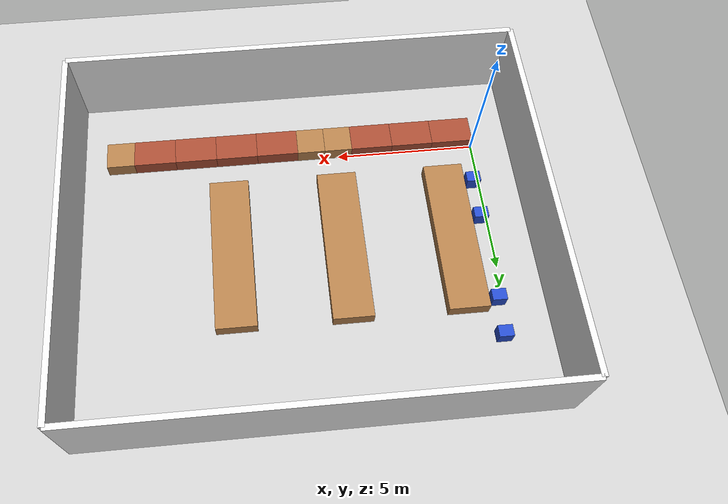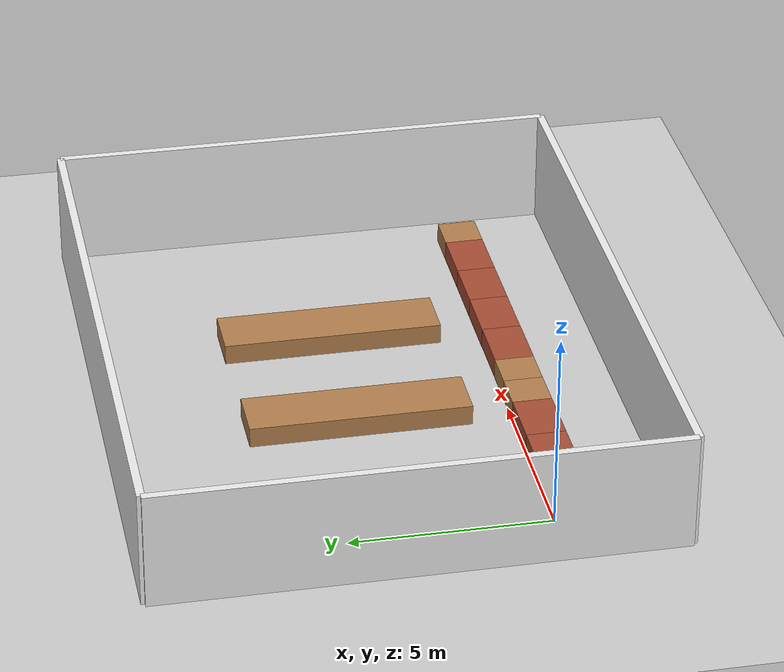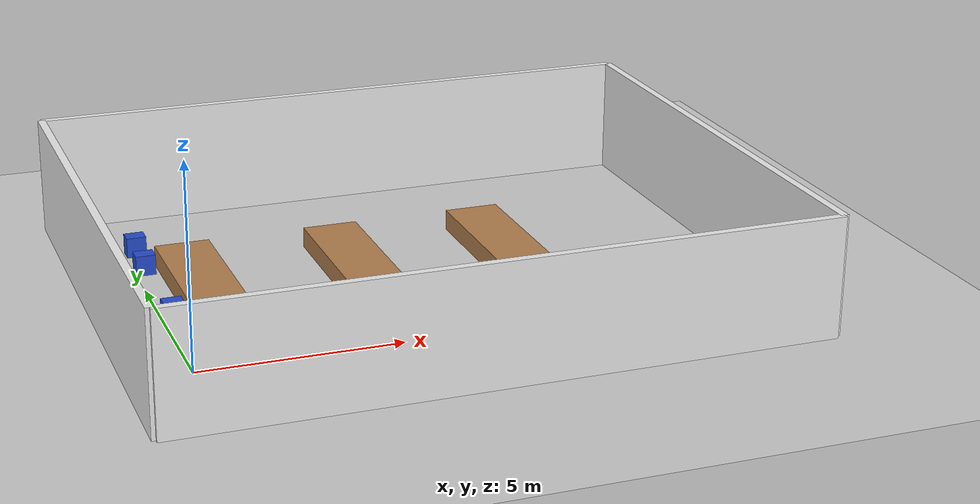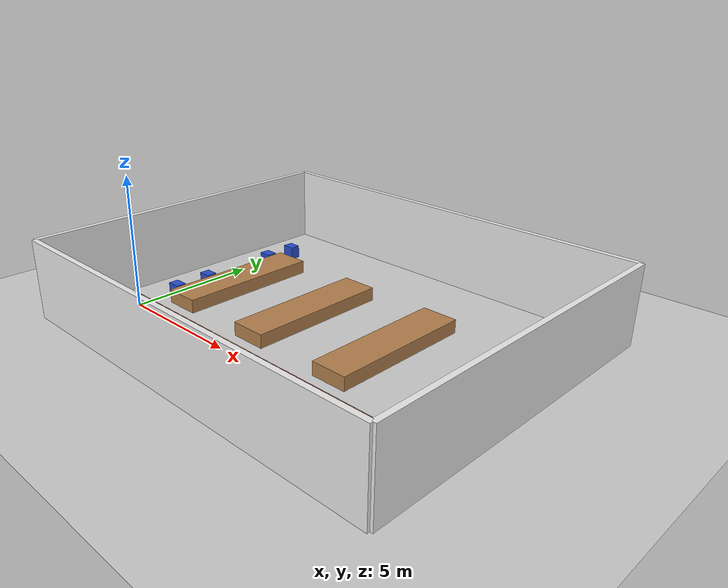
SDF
<sdf version="1.7">
 <world name="default">
  <light name="sun" type="directional">
   <pose>0 0 10 0 -0 0</pose>
   <diffuse>0.8 0.8 0.8 1</diffuse>
   <specular>0.2 0.2 0.2 1</specular>
   <attenuation>
    <range>1000</range>
    <constant>0.9</constant>
    <linear>0.01</linear>
    <quadratic>0.001</quadratic>
   </attenuation>
   <direction>-0.5 0.1 -0.9</direction>
   <spot><inner_angle>0</inner_angle><outer_angle>0</outer_angle><falloff>0</falloff></spot>
  </light>
  <gravity>0 0 -9.8</gravity>
  <magnetic_field>6e-06 2.3e-05 -4.2e-05</magnetic_field>
  <atmosphere type="adiabatic"/>
  <physics type="ode">
   <max_step_size>0.001</max_step_size>
   <real_time_factor>1</real_time_factor>
   <real_time_update_rate>1000</real_time_update_rate>
  </physics>
  <scene><ambient>0.4 0.4 0.4 1</ambient><background>0.7 0.7 0.7 1</background><shadows>1</shadows></scene>
  <audio><device>default</device></audio>
  <spherical_coordinates>
   <surface_model>EARTH_WGS84</surface_model>
   <latitude_deg>0</latitude_deg>
   <longitude_deg>0</longitude_deg>
   <elevation>0</elevation>
   <heading_deg>0</heading_deg>
  </spherical_coordinates>
  <model name="labwall">
   <link name="link_3">
    <inertial>
     <mass>1</mass>
     <inertia>
      <ixx>0.166667</ixx>
      <ixy>0</ixy>
      <ixz>0</ixz>
      <iyy>0.166667</iyy>
      <iyz>0</iyz>
      <izz>0.166667</izz>
     </inertia>
    </inertial>
    <visual name="visual">
     <geometry><box><size>1.5 1 1</size></box></geometry>
     <material>
      <lighting>1</lighting>
      <script><uri>file://media/materials/scripts/gazebo.material</uri><name>Gazebo/Bricks</name></script>
      <shader type="pixel"><normal_map>__default__</normal_map></shader>
      <ambient>0.3 0.3 0.3 1</ambient>
      <diffuse>0.7 0.7 0.7 1</diffuse>
      <specular>0.01 0.01 0.01 1</specular>
      <emissive>0 0 0 1</emissive>
     </material>
    </visual>
    <collision name="collision">
     <geometry><box><size>1.5 1 1</size></box></geometry>
     <surface>
      <friction>
       <ode><mu>1</mu><mu2>1</mu2><fdir1>0 0 0</fdir1><slip1>0</slip1><slip2>0</slip2></ode>
       <torsional>
        <coefficient>1</coefficient>
        <patch_radius>0</patch_radius>
        <surface_radius>0</surface_radius>
        <use_patch_radius>1</use_patch_radius>
        <ode><slip>0</slip></ode>
       </torsional>
      </friction>
      <bounce><restitution_coefficient>0</restitution_coefficient><threshold>1e+06</threshold></bounce>
      <contact>
       <collide_without_contact>0</collide_without_contact>
       <collide_without_contact_bitmask>1</collide_without_contact_bitmask>
       <collide_bitmask>1</collide_bitmask>
       <ode>
        <soft_cfm>0</soft_cfm>
        <soft_erp>0.2</soft_erp>
        <kp>1e+06</kp>
        <kd>1</kd>
        <max_vel>0.01</max_vel>
        <min_depth>0</min_depth>
       </ode>
       <bullet>
        <split_impulse>1</split_impulse>
        <split_impulse_penetration_threshold>-0.01</split_impulse_penetration_threshold>
        <soft_cfm>0</soft_cfm>
        <soft_erp>0.2</soft_erp>
        <kp>1e+06</kp>
        <kd>1</kd>
       </bullet>
      </contact>
     </surface>
    </collision>
   </link>
   <static>1</static>
   <pose>0.75 -0.5 0 0 -0 0</pose>
  </model>
  <model name="labwall_0">
   <link name="link_3">
    <inertial>
     <mass>1</mass>
     <inertia>
      <ixx>0.166667</ixx>
      <ixy>0</ixy>
      <ixz>0</ixz>
      <iyy>0.166667</iyy>
      <iyz>0</iyz>
      <izz>0.166667</izz>
     </inertia>
    </inertial>
    <visual name="visual">
     <geometry><box><size>1.5 1 1</size></box></geometry>
     <material>
      <lighting>1</lighting>
      <script><uri>file://media/materials/scripts/gazebo.material</uri><name>Gazebo/Bricks</name></script>
      <shader type="pixel"><normal_map>__default__</normal_map></shader>
      <ambient>0.3 0.3 0.3 1</ambient>
      <diffuse>0.7 0.7 0.7 1</diffuse>
      <specular>0.01 0.01 0.01 1</specular>
      <emissive>0 0 0 1</emissive>
     </material>
    </visual>
    <collision name="collision">
     <geometry><box><size>1.5 1 1</size></box></geometry>
     <surface>
      <friction>
       <ode><mu>1</mu><mu2>1</mu2><fdir1>0 0 0</fdir1><slip1>0</slip1><slip2>0</slip2></ode>
       <torsional>
        <coefficient>1</coefficient>
        <patch_radius>0</patch_radius>
        <surface_radius>0</surface_radius>
        <use_patch_radius>1</use_patch_radius>
        <ode><slip>0</slip></ode>
       </torsional>
      </friction>
      <bounce><restitution_coefficient>0</restitution_coefficient><threshold>1e+06</threshold></bounce>
      <contact>
       <collide_without_contact>0</collide_without_contact>
       <collide_without_contact_bitmask>1</collide_without_contact_bitmask>
       <collide_bitmask>1</collide_bitmask>
       <ode>
        <soft_cfm>0</soft_cfm>
        <soft_erp>0.2</soft_erp>
        <kp>1e+06</kp>
        <kd>1</kd>
        <max_vel>0.01</max_vel>
        <min_depth>0</min_depth>
       </ode>
       <bullet>
        <split_impulse>1</split_impulse>
        <split_impulse_penetration_threshold>-0.01</split_impulse_penetration_threshold>
        <soft_cfm>0</soft_cfm>
        <soft_erp>0.2</soft_erp>
        <kp>1e+06</kp>
        <kd>1</kd>
       </bullet>
      </contact>
     </surface>
    </collision>
   </link>
   <static>1</static>
   <pose>2.25 -0.5 0 0 -0 0</pose>
  </model>
  <model name="labwall_1">
   <link name="link_3">
    <inertial>
     <mass>1</mass>
     <inertia>
      <ixx>0.166667</ixx>
      <ixy>0</ixy>
      <ixz>0</ixz>
      <iyy>0.166667</iyy>
      <iyz>0</iyz>
      <izz>0.166667</izz>
     </inertia>
    </inertial>
    <visual name="visual">
     <geometry><box><size>1.5 1 1</size></box></geometry>
     <material>
      <lighting>1</lighting>
      <script><uri>file://media/materials/scripts/gazebo.material</uri><name>Gazebo/Bricks</name></script>
      <shader type="pixel"><normal_map>__default__</normal_map></shader>
      <ambient>0.3 0.3 0.3 1</ambient>
      <diffuse>0.7 0.7 0.7 1</diffuse>
      <specular>0.01 0.01 0.01 1</specular>
      <emissive>0 0 0 1</emissive>
     </material>
    </visual>
    <collision name="collision">
     <geometry><box><size>1.5 1 1</size></box></geometry>
     <surface>
      <friction>
       <ode><mu>1</mu><mu2>1</mu2><fdir1>0 0 0</fdir1><slip1>0</slip1><slip2>0</slip2></ode>
       <torsional>
        <coefficient>1</coefficient>
        <patch_radius>0</patch_radius>
        <surface_radius>0</surface_radius>
        <use_patch_radius>1</use_patch_radius>
        <ode><slip>0</slip></ode>
       </torsional>
      </friction>
      <bounce><restitution_coefficient>0</restitution_coefficient><threshold>1e+06</threshold></bounce>
      <contact>
       <collide_without_contact>0</collide_without_contact>
       <collide_without_contact_bitmask>1</collide_without_contact_bitmask>
       <collide_bitmask>1</collide_bitmask>
       <ode>
        <soft_cfm>0</soft_cfm>
        <soft_erp>0.2</soft_erp>
        <kp>1e+06</kp>
        <kd>1</kd>
        <max_vel>0.01</max_vel>
        <min_depth>0</min_depth>
       </ode>
       <bullet>
        <split_impulse>1</split_impulse>
        <split_impulse_penetration_threshold>-0.01</split_impulse_penetration_threshold>
        <soft_cfm>0</soft_cfm>
        <soft_erp>0.2</soft_erp>
        <kp>1e+06</kp>
        <kd>1</kd>
       </bullet>
      </contact>
     </surface>
    </collision>
   </link>
   <static>1</static>
   <pose>3.75 -0.5 0 0 -0 0</pose>
  </model>
  <model name="labwall_2">
   <link name="link_3">
    <inertial>
     <mass>1</mass>
     <inertia>
      <ixx>0.166667</ixx>
      <ixy>0</ixy>
      <ixz>0</ixz>
      <iyy>0.166667</iyy>
      <iyz>0</iyz>
      <izz>0.166667</izz>
     </inertia>
    </inertial>
    <visual name="visual">
     <geometry><box><size>1.5 1 1</size></box></geometry>
     <material>
      <lighting>1</lighting>
      <script><uri>file://media/materials/scripts/gazebo.material</uri><name>Gazebo/Bricks</name></script>
      <shader type="pixel"><normal_map>__default__</normal_map></shader>
      <ambient>0.3 0.3 0.3 1</ambient>
      <diffuse>0.7 0.7 0.7 1</diffuse>
      <specular>0.01 0.01 0.01 1</specular>
      <emissive>0 0 0 1</emissive>
     </material>
    </visual>
    <collision name="collision">
     <geometry><box><size>1.5 1 1</size></box></geometry>
     <surface>
      <friction>
       <ode><mu>1</mu><mu2>1</mu2><fdir1>0 0 0</fdir1><slip1>0</slip1><slip2>0</slip2></ode>
       <torsional>
        <coefficient>1</coefficient>
        <patch_radius>0</patch_radius>
        <surface_radius>0</surface_radius>
        <use_patch_radius>1</use_patch_radius>
        <ode><slip>0</slip></ode>
       </torsional>
      </friction>
      <bounce><restitution_coefficient>0</restitution_coefficient><threshold>1e+06</threshold></bounce>
      <contact>
       <collide_without_contact>0</collide_without_contact>
       <collide_without_contact_bitmask>1</collide_without_contact_bitmask>
       <collide_bitmask>1</collide_bitmask>
       <ode>
        <soft_cfm>0</soft_cfm>
        <soft_erp>0.2</soft_erp>
        <kp>1e+06</kp>
        <kd>1</kd>
        <max_vel>0.01</max_vel>
        <min_depth>0</min_depth>
       </ode>
       <bullet>
        <split_impulse>1</split_impulse>
        <split_impulse_penetration_threshold>-0.01</split_impulse_penetration_threshold>
        <soft_cfm>0</soft_cfm>
        <soft_erp>0.2</soft_erp>
        <kp>1e+06</kp>
        <kd>1</kd>
       </bullet>
      </contact>
     </surface>
    </collision>
   </link>
   <static>1</static>
   <pose>10.25 -0.5 0 0 -0 0</pose>
  </model>
  <model name="labwall_3">
   <link name="link_3">
    <inertial>
     <mass>1</mass>
     <inertia>
      <ixx>0.166667</ixx>
      <ixy>0</ixy>
      <ixz>0</ixz>
      <iyy>0.166667</iyy>
      <iyz>0</iyz>
      <izz>0.166667</izz>
     </inertia>
    </inertial>
    <visual name="visual">
     <geometry><box><size>1.5 1 1</size></box></geometry>
     <material>
      <lighting>1</lighting>
      <script><uri>file://media/materials/scripts/gazebo.material</uri><name>Gazebo/Bricks</name></script>
      <shader type="pixel"><normal_map>__default__</normal_map></shader>
      <ambient>0.3 0.3 0.3 1</ambient>
      <diffuse>0.7 0.7 0.7 1</diffuse>
      <specular>0.01 0.01 0.01 1</specular>
      <emissive>0 0 0 1</emissive>
     </material>
    </visual>
    <collision name="collision">
     <geometry><box><size>1.5 1 1</size></box></geometry>
     <surface>
      <friction>
       <ode><mu>1</mu><mu2>1</mu2><fdir1>0 0 0</fdir1><slip1>0</slip1><slip2>0</slip2></ode>
       <torsional>
        <coefficient>1</coefficient>
        <patch_radius>0</patch_radius>
        <surface_radius>0</surface_radius>
        <use_patch_radius>1</use_patch_radius>
        <ode><slip>0</slip></ode>
       </torsional>
      </friction>
      <bounce><restitution_coefficient>0</restitution_coefficient><threshold>1e+06</threshold></bounce>
      <contact>
       <collide_without_contact>0</collide_without_contact>
       <collide_without_contact_bitmask>1</collide_without_contact_bitmask>
       <collide_bitmask>1</collide_bitmask>
       <ode>
        <soft_cfm>0</soft_cfm>
        <soft_erp>0.2</soft_erp>
        <kp>1e+06</kp>
        <kd>1</kd>
        <max_vel>0.01</max_vel>
        <min_depth>0</min_depth>
       </ode>
       <bullet>
        <split_impulse>1</split_impulse>
        <split_impulse_penetration_threshold>-0.01</split_impulse_penetration_threshold>
        <soft_cfm>0</soft_cfm>
        <soft_erp>0.2</soft_erp>
        <kp>1e+06</kp>
        <kd>1</kd>
       </bullet>
      </contact>
     </surface>
    </collision>
   </link>
   <static>1</static>
   <pose>8.75 -0.5 0 0 -0 0</pose>
  </model>
  <model name="labwall_4">
   <link name="link_3">
    <inertial>
     <mass>1</mass>
     <inertia>
      <ixx>0.166667</ixx>
      <ixy>0</ixy>
      <ixz>0</ixz>
      <iyy>0.166667</iyy>
      <iyz>0</iyz>
      <izz>0.166667</izz>
     </inertia>
    </inertial>
    <visual name="visual">
     <geometry><box><size>1.5 1 1</size></box></geometry>
     <material>
      <lighting>1</lighting>
      <script><uri>file://media/materials/scripts/gazebo.material</uri><name>Gazebo/Bricks</name></script>
      <shader type="pixel"><normal_map>__default__</normal_map></shader>
      <ambient>0.3 0.3 0.3 1</ambient>
      <diffuse>0.7 0.7 0.7 1</diffuse>
      <specular>0.01 0.01 0.01 1</specular>
      <emissive>0 0 0 1</emissive>
     </material>
    </visual>
    <collision name="collision">
     <geometry><box><size>1.5 1 1</size></box></geometry>
     <surface>
      <friction>
       <ode><mu>1</mu><mu2>1</mu2><fdir1>0 0 0</fdir1><slip1>0</slip1><slip2>0</slip2></ode>
       <torsional>
        <coefficient>1</coefficient>
        <patch_radius>0</patch_radius>
        <surface_radius>0</surface_radius>
        <use_patch_radius>1</use_patch_radius>
        <ode><slip>0</slip></ode>
       </torsional>
      </friction>
      <bounce><restitution_coefficient>0</restitution_coefficient><threshold>1e+06</threshold></bounce>
      <contact>
       <collide_without_contact>0</collide_without_contact>
       <collide_without_contact_bitmask>1</collide_without_contact_bitmask>
       <collide_bitmask>1</collide_bitmask>
       <ode>
        <soft_cfm>0</soft_cfm>
        <soft_erp>0.2</soft_erp>
        <kp>1e+06</kp>
        <kd>1</kd>
        <max_vel>0.01</max_vel>
        <min_depth>0</min_depth>
       </ode>
       <bullet>
        <split_impulse>1</split_impulse>
        <split_impulse_penetration_threshold>-0.01</split_impulse_penetration_threshold>
        <soft_cfm>0</soft_cfm>
        <soft_erp>0.2</soft_erp>
        <kp>1e+06</kp>
        <kd>1</kd>
       </bullet>
      </contact>
     </surface>
    </collision>
   </link>
   <static>1</static>
   <pose>7.25 -0.504422 0 0 -0 0</pose>
  </model>
  <model name="labwall_5">
   <link name="link_3">
    <inertial>
     <mass>1</mass>
     <inertia>
      <ixx>0.166667</ixx>
      <ixy>0</ixy>
      <ixz>0</ixz>
      <iyy>0.166667</iyy>
      <iyz>0</iyz>
      <izz>0.166667</izz>
     </inertia>
    </inertial>
    <visual name="visual">
     <geometry><box><size>1.5 1 1</size></box></geometry>
     <material>
      <lighting>1</lighting>
      <script><uri>file://media/materials/scripts/gazebo.material</uri><name>Gazebo/Bricks</name></script>
      <shader type="pixel"><normal_map>__default__</normal_map></shader>
      <ambient>0.3 0.3 0.3 1</ambient>
      <diffuse>0.7 0.7 0.7 1</diffuse>
      <specular>0.01 0.01 0.01 1</specular>
      <emissive>0 0 0 1</emissive>
     </material>
    </visual>
    <collision name="collision">
     <geometry><box><size>1.5 1 1</size></box></geometry>
     <surface>
      <friction>
       <ode><mu>1</mu><mu2>1</mu2><fdir1>0 0 0</fdir1><slip1>0</slip1><slip2>0</slip2></ode>
       <torsional>
        <coefficient>1</coefficient>
        <patch_radius>0</patch_radius>
        <surface_radius>0</surface_radius>
        <use_patch_radius>1</use_patch_radius>
        <ode><slip>0</slip></ode>
       </torsional>
      </friction>
      <bounce><restitution_coefficient>0</restitution_coefficient><threshold>1e+06</threshold></bounce>
      <contact>
       <collide_without_contact>0</collide_without_contact>
       <collide_without_contact_bitmask>1</collide_without_contact_bitmask>
       <collide_bitmask>1</collide_bitmask>
       <ode>
        <soft_cfm>0</soft_cfm>
        <soft_erp>0.2</soft_erp>
        <kp>1e+06</kp>
        <kd>1</kd>
        <max_vel>0.01</max_vel>
        <min_depth>0</min_depth>
       </ode>
       <bullet>
        <split_impulse>1</split_impulse>
        <split_impulse_penetration_threshold>-0.01</split_impulse_penetration_threshold>
        <soft_cfm>0</soft_cfm>
        <soft_erp>0.2</soft_erp>
        <kp>1e+06</kp>
        <kd>1</kd>
       </bullet>
      </contact>
     </surface>
    </collision>
   </link>
   <static>1</static>
   <pose>11.75 -0.5 0 0 -0 0</pose>
  </model>
  <model name="labdoor">
   <link name="link_0">
    <inertial>
     <mass>1</mass>
     <inertia>
      <ixx>0.166667</ixx>
      <ixy>0</ixy>
      <ixz>0</ixz>
      <iyy>0.166667</iyy>
      <iyz>0</iyz>
      <izz>0.166667</izz>
     </inertia>
    </inertial>
    <pose>0 2e-06 0 0 -0 0</pose>
    <visual name="visual">
     <geometry><box><size>1 1 1</size></box></geometry>
     <material>
      <lighting>1</lighting>
      <script><uri>file://media/materials/scripts/gazebo.material</uri><name>Gazebo/Wood</name></script>
      <shader type="pixel"><normal_map>__default__</normal_map></shader>
      <ambient>0.3 0.3 0.3 1</ambient>
      <diffuse>0.7 0.7 0.7 1</diffuse>
      <specular>0.01 0.01 0.01 1</specular>
      <emissive>0 0 0 1</emissive>
     </material>
    </visual>
    <collision name="collision">
     <geometry><box><size>1 1 1</size></box></geometry>
     <surface>
      <friction>
       <ode><mu>1</mu><mu2>1</mu2><fdir1>0 0 0</fdir1><slip1>0</slip1><slip2>0</slip2></ode>
       <torsional>
        <coefficient>1</coefficient>
        <patch_radius>0</patch_radius>
        <surface_radius>0</surface_radius>
        <use_patch_radius>1</use_patch_radius>
        <ode><slip>0</slip></ode>
       </torsional>
      </friction>
      <bounce><restitution_coefficient>0</restitution_coefficient><threshold>1e+06</threshold></bounce>
      <contact>
       <collide_without_contact>0</collide_without_contact>
       <collide_without_contact_bitmask>1</collide_without_contact_bitmask>
       <collide_bitmask>1</collide_bitmask>
       <ode>
        <soft_cfm>0</soft_cfm>
        <soft_erp>0.2</soft_erp>
        <kp>1e+06</kp>
        <kd>1</kd>
        <max_vel>0.01</max_vel>
        <min_depth>0</min_depth>
       </ode>
       <bullet>
        <split_impulse>1</split_impulse>
        <split_impulse_penetration_threshold>-0.01</split_impulse_penetration_threshold>
        <soft_cfm>0</soft_cfm>
        <soft_erp>0.2</soft_erp>
        <kp>1e+06</kp>
        <kd>1</kd>
       </bullet>
      </contact>
     </surface>
    </collision>
   </link>
   <static>1</static>
   <pose>5 -0.5 0 0 -0 0</pose>
  </model>
  <model name="labdoor_0">
   <link name="link_0">
    <inertial>
     <mass>1</mass>
     <inertia>
      <ixx>0.166667</ixx>
      <ixy>0</ixy>
      <ixz>0</ixz>
      <iyy>0.166667</iyy>
      <iyz>0</iyz>
      <izz>0.166667</izz>
     </inertia>
    </inertial>
    <pose>0 2e-06 0 0 -0 0</pose>
    <visual name="visual">
     <geometry><box><size>1 1 1</size></box></geometry>
     <material>
      <lighting>1</lighting>
      <script><uri>file://media/materials/scripts/gazebo.material</uri><name>Gazebo/Wood</name></script>
      <shader type="pixel"><normal_map>__default__</normal_map></shader>
      <ambient>0.3 0.3 0.3 1</ambient>
      <diffuse>0.7 0.7 0.7 1</diffuse>
      <specular>0.01 0.01 0.01 1</specular>
      <emissive>0 0 0 1</emissive>
     </material>
    </visual>
    <collision name="collision">
     <geometry><box><size>1 1 1</size></box></geometry>
     <surface>
      <friction>
       <ode><mu>1</mu><mu2>1</mu2><fdir1>0 0 0</fdir1><slip1>0</slip1><slip2>0</slip2></ode>
       <torsional>
        <coefficient>1</coefficient>
        <patch_radius>0</patch_radius>
        <surface_radius>0</surface_radius>
        <use_patch_radius>1</use_patch_radius>
        <ode><slip>0</slip></ode>
       </torsional>
      </friction>
      <bounce><restitution_coefficient>0</restitution_coefficient><threshold>1e+06</threshold></bounce>
      <contact>
       <collide_without_contact>0</collide_without_contact>
       <collide_without_contact_bitmask>1</collide_without_contact_bitmask>
       <collide_bitmask>1</collide_bitmask>
       <ode>
        <soft_cfm>0</soft_cfm>
        <soft_erp>0.2</soft_erp>
        <kp>1e+06</kp>
        <kd>1</kd>
        <max_vel>0.01</max_vel>
        <min_depth>0</min_depth>
       </ode>
       <bullet>
        <split_impulse>1</split_impulse>
        <split_impulse_penetration_threshold>-0.01</split_impulse_penetration_threshold>
        <soft_cfm>0</soft_cfm>
        <soft_erp>0.2</soft_erp>
        <kp>1e+06</kp>
        <kd>1</kd>
       </bullet>
      </contact>
     </surface>
    </collision>
   </link>
   <static>1</static>
   <pose>6 -0.5 0 0 -0 0</pose>
  </model>
  <model name="boundary_north">
   <static>1</static>
   <pose>6.5 10 1.5 0 -0 0</pose>
   <link name="link">
    <collision name="collision"><geometry><box><size>16 0.2 3</size></box></geometry></collision>
    <visual name="visual">
     <geometry><box><size>16 0.2 3</size></box></geometry>
     <material>
      <script><uri>file://media/materials/scripts/gazebo.material</uri><name>Gazebo/White</name></script>
     </material>
    </visual>
   </link>
  </model>
  <model name="boundary_south">
   <static>1</static>
   <pose>6.5 -3 1.5 0 -0 0</pose>
   <link name="link">
    <collision name="collision"><geometry><box><size>16 0.2 3</size></box></geometry></collision>
    <visual name="visual">
     <geometry><box><size>16 0.2 3</size></box></geometry>
     <material>
      <script><uri>file://media/materials/scripts/gazebo.material</uri><name>Gazebo/White</name></script>
     </material>
    </visual>
   </link>
  </model>
  <model name="boundary_east">
   <static>1</static>
   <pose>14.5 3.5 1.5 0 -0 0</pose>
   <link name="link">
    <collision name="collision"><geometry><box><size>0.2 13 3</size></box></geometry></collision>
    <visual name="visual">
     <geometry><box><size>0.2 13 3</size></box></geometry>
     <material>
      <script><uri>file://media/materials/scripts/gazebo.material</uri><name>Gazebo/White</name></script>
     </material>
    </visual>
   </link>
  </model>
  <model name="boundary_west">
   <static>1</static>
   <pose>-1.5 3.5 1.5 0 -0 0</pose>
   <link name="link">
    <collision name="collision"><geometry><box><size>0.2 13 3</size></box></geometry></collision>
    <visual name="visual">
     <geometry><box><size>0.2 13 3</size></box></geometry>
     <material>
      <script><uri>file://media/materials/scripts/gazebo.material</uri><name>Gazebo/White</name></script>
     </material>
    </visual>
   </link>
  </model>
  <model name="labdoor_1">
   <link name="link_0">
    <inertial>
     <mass>1</mass>
     <inertia>
      <ixx>0.166667</ixx>
      <ixy>0</ixy>
      <ixz>0</ixz>
      <iyy>0.166667</iyy>
      <iyz>0</iyz>
      <izz>0.166667</izz>
     </inertia>
    </inertial>
    <pose>0 2e-06 0 0 -0 0</pose>
    <visual name="visual">
     <geometry><box><size>1 1 1</size></box></geometry>
     <material>
      <lighting>1</lighting>
      <script><uri>file://media/materials/scripts/gazebo.material</uri><name>Gazebo/Wood</name></script>
      <shader type="pixel"><normal_map>__default__</normal_map></shader>
      <ambient>0.3 0.3 0.3 1</ambient>
      <diffuse>0.7 0.7 0.7 1</diffuse>
      <specular>0.01 0.01 0.01 1</specular>
      <emissive>0 0 0 1</emissive>
     </material>
    </visual>
    <collision name="collision">
     <geometry><box><size>1 1 1</size></box></geometry>
     <surface>
      <friction>
       <ode><mu>1</mu><mu2>1</mu2><fdir1>0 0 0</fdir1><slip1>0</slip1><slip2>0</slip2></ode>
       <torsional>
        <coefficient>1</coefficient>
        <patch_radius>0</patch_radius>
        <surface_radius>0</surface_radius>
        <use_patch_radius>1</use_patch_radius>
        <ode><slip>0</slip></ode>
       </torsional>
      </friction>
      <bounce><restitution_coefficient>0</restitution_coefficient><threshold>1e+06</threshold></bounce>
      <contact>
       <collide_without_contact>0</collide_without_contact>
       <collide_without_contact_bitmask>1</collide_without_contact_bitmask>
       <collide_bitmask>1</collide_bitmask>
       <ode>
        <soft_cfm>0</soft_cfm>
        <soft_erp>0.2</soft_erp>
        <kp>1e+06</kp>
        <kd>1</kd>
        <max_vel>0.01</max_vel>
        <min_depth>0</min_depth>
       </ode>
       <bullet>
        <split_impulse>1</split_impulse>
        <split_impulse_penetration_threshold>-0.01</split_impulse_penetration_threshold>
        <soft_cfm>0</soft_cfm>
        <soft_erp>0.2</soft_erp>
        <kp>1e+06</kp>
        <kd>1</kd>
       </bullet>
      </contact>
     </surface>
    </collision>
   </link>
   <static>1</static>
   <pose>13 -0.5 0 0 -0 0</pose>
  </model>
  <model name="labseat">
   <link name="link_0">
    <inertial>
     <mass>1</mass>
     <inertia>
      <ixx>0.166667</ixx>
      <ixy>0</ixy>
      <ixz>0</ixz>
      <iyy>0.166667</iyy>
      <iyz>0</iyz>
      <izz>0.166667</izz>
     </inertia>
    </inertial>
    <visual name="visual">
     <geometry><box><size>0.5 0.4 1</size></box></geometry>
     <material>
      <lighting>1</lighting>
      <script><uri>file://media/materials/scripts/gazebo.material</uri><name>Gazebo/Blue</name></script>
      <shader type="pixel"><normal_map>__default__</normal_map></shader>
      <ambient>0.3 0.3 0.3 1</ambient>
      <diffuse>0.7 0.7 0.7 1</diffuse>
      <specular>0.01 0.01 0.01 1</specular>
      <emissive>0 0 0 1</emissive>
     </material>
    </visual>
    <collision name="collision">
     <geometry><box><size>0.5 0.4 1</size></box></geometry>
     <surface>
      <friction>
       <ode><mu>1</mu><mu2>1</mu2><fdir1>0 0 0</fdir1><slip1>0</slip1><slip2>0</slip2></ode>
       <torsional>
        <coefficient>1</coefficient>
        <patch_radius>0</patch_radius>
        <surface_radius>0</surface_radius>
        <use_patch_radius>1</use_patch_radius>
        <ode><slip>0</slip></ode>
       </torsional>
      </friction>
      <bounce><restitution_coefficient>0</restitution_coefficient><threshold>1e+06</threshold></bounce>
      <contact>
       <collide_without_contact>0</collide_without_contact>
       <collide_without_contact_bitmask>1</collide_without_contact_bitmask>
       <collide_bitmask>1</collide_bitmask>
       <ode>
        <soft_cfm>0</soft_cfm>
        <soft_erp>0.2</soft_erp>
        <kp>1e+06</kp>
        <kd>1</kd>
        <max_vel>0.01</max_vel>
        <min_depth>0</min_depth>
       </ode>
       <bullet>
        <split_impulse>1</split_impulse>
        <split_impulse_penetration_threshold>-0.01</split_impulse_penetration_threshold>
        <soft_cfm>0</soft_cfm>
        <soft_erp>0.2</soft_erp>
        <kp>1e+06</kp>
        <kd>1</kd>
       </bullet>
      </contact>
     </surface>
    </collision>
   </link>
   <static>1</static>
   <pose>0.25 1.55715 0 0 -0 0</pose>
  </model>
  <model name="labseat_clone">
   <link name="link_0">
    <inertial>
     <mass>1</mass>
     <inertia>
      <ixx>0.166667</ixx>
      <ixy>0</ixy>
      <ixz>0</ixz>
      <iyy>0.166667</iyy>
      <iyz>0</iyz>
      <izz>0.166667</izz>
     </inertia>
    </inertial>
    <visual name="visual">
     <geometry><box><size>0.5 0.4 1</size></box></geometry>
     <material>
      <lighting>1</lighting>
      <script><uri>file://media/materials/scripts/gazebo.material</uri><name>Gazebo/Blue</name></script>
      <shader type="pixel"><normal_map>__default__</normal_map></shader>
      <ambient>0.3 0.3 0.3 1</ambient>
      <diffuse>0.7 0.7 0.7 1</diffuse>
      <specular>0.01 0.01 0.01 1</specular>
      <emissive>0 0 0 1</emissive>
     </material>
    </visual>
    <collision name="collision">
     <geometry><box><size>0.5 0.4 1</size></box></geometry>
     <surface>
      <friction>
       <ode><mu>1</mu><mu2>1</mu2><fdir1>0 0 0</fdir1><slip1>0</slip1><slip2>0</slip2></ode>
       <torsional>
        <coefficient>1</coefficient>
        <patch_radius>0</patch_radius>
        <surface_radius>0</surface_radius>
        <use_patch_radius>1</use_patch_radius>
        <ode><slip>0</slip></ode>
       </torsional>
      </friction>
      <bounce><restitution_coefficient>0</restitution_coefficient><threshold>1e+06</threshold></bounce>
      <contact>
       <collide_without_contact>0</collide_without_contact>
       <collide_without_contact_bitmask>1</collide_without_contact_bitmask>
       <collide_bitmask>1</collide_bitmask>
       <ode>
        <soft_cfm>0</soft_cfm>
        <soft_erp>0.2</soft_erp>
        <kp>1e+06</kp>
        <kd>1</kd>
        <max_vel>0.01</max_vel>
        <min_depth>0</min_depth>
       </ode>
       <bullet>
        <split_impulse>1</split_impulse>
        <split_impulse_penetration_threshold>-0.01</split_impulse_penetration_threshold>
        <soft_cfm>0</soft_cfm>
        <soft_erp>0.2</soft_erp>
        <kp>1e+06</kp>
        <kd>1</kd>
       </bullet>
      </contact>
     </surface>
    </collision>
   </link>
   <static>1</static>
   <pose>0.25 3.03483 0 0 -0 0</pose>
  </model>
  <model name="labseat_clone_0">
   <link name="link_0">
    <inertial>
     <mass>1</mass>
     <inertia>
      <ixx>0.166667</ixx>
      <ixy>0</ixy>
      <ixz>0</ixz>
      <iyy>0.166667</iyy>
      <iyz>0</iyz>
      <izz>0.166667</izz>
     </inertia>
    </inertial>
    <visual name="visual">
     <geometry><box><size>0.5 0.4 1</size></box></geometry>
     <material>
      <lighting>1</lighting>
      <script><uri>file://media/materials/scripts/gazebo.material</uri><name>Gazebo/Blue</name></script>
      <shader type="pixel"><normal_map>__default__</normal_map></shader>
      <ambient>0.3 0.3 0.3 1</ambient>
      <diffuse>0.7 0.7 0.7 1</diffuse>
      <specular>0.01 0.01 0.01 1</specular>
      <emissive>0 0 0 1</emissive>
     </material>
    </visual>
    <collision name="collision">
     <geometry><box><size>0.5 0.4 1</size></box></geometry>
     <surface>
      <friction>
       <ode><mu>1</mu><mu2>1</mu2><fdir1>0 0 0</fdir1><slip1>0</slip1><slip2>0</slip2></ode>
       <torsional>
        <coefficient>1</coefficient>
        <patch_radius>0</patch_radius>
        <surface_radius>0</surface_radius>
        <use_patch_radius>1</use_patch_radius>
        <ode><slip>0</slip></ode>
       </torsional>
      </friction>
      <bounce><restitution_coefficient>0</restitution_coefficient><threshold>1e+06</threshold></bounce>
      <contact>
       <collide_without_contact>0</collide_without_contact>
       <collide_without_contact_bitmask>1</collide_without_contact_bitmask>
       <collide_bitmask>1</collide_bitmask>
       <ode>
        <soft_cfm>0</soft_cfm>
        <soft_erp>0.2</soft_erp>
        <kp>1e+06</kp>
        <kd>1</kd>
        <max_vel>0.01</max_vel>
        <min_depth>0</min_depth>
       </ode>
       <bullet>
        <split_impulse>1</split_impulse>
        <split_impulse_penetration_threshold>-0.01</split_impulse_penetration_threshold>
        <soft_cfm>0</soft_cfm>
        <soft_erp>0.2</soft_erp>
        <kp>1e+06</kp>
        <kd>1</kd>
       </bullet>
      </contact>
     </surface>
    </collision>
   </link>
   <static>1</static>
   <pose>0.291949 7.5 0 0 -0 0</pose>
  </model>
  <model name="labseat_clone_1">
   <link name="link_0">
    <inertial>
     <mass>1</mass>
     <inertia>
      <ixx>0.166667</ixx>
      <ixy>0</ixy>
      <ixz>0</ixz>
      <iyy>0.166667</iyy>
      <iyz>0</iyz>
      <izz>0.166667</izz>
     </inertia>
    </inertial>
    <visual name="visual">
     <geometry><box><size>0.5 0.4 1</size></box></geometry>
     <material>
      <lighting>1</lighting>
      <script><uri>file://media/materials/scripts/gazebo.material</uri><name>Gazebo/Blue</name></script>
      <shader type="pixel"><normal_map>__default__</normal_map></shader>
      <ambient>0.3 0.3 0.3 1</ambient>
      <diffuse>0.7 0.7 0.7 1</diffuse>
      <specular>0.01 0.01 0.01 1</specular>
      <emissive>0 0 0 1</emissive>
     </material>
    </visual>
    <collision name="collision">
     <geometry><box><size>0.5 0.4 1</size></box></geometry>
     <surface>
      <friction>
       <ode><mu>1</mu><mu2>1</mu2><fdir1>0 0 0</fdir1><slip1>0</slip1><slip2>0</slip2></ode>
       <torsional>
        <coefficient>1</coefficient>
        <patch_radius>0</patch_radius>
        <surface_radius>0</surface_radius>
        <use_patch_radius>1</use_patch_radius>
        <ode><slip>0</slip></ode>
       </torsional>
      </friction>
      <bounce><restitution_coefficient>0</restitution_coefficient><threshold>1e+06</threshold></bounce>
      <contact>
       <collide_without_contact>0</collide_without_contact>
       <collide_without_contact_bitmask>1</collide_without_contact_bitmask>
       <collide_bitmask>1</collide_bitmask>
       <ode>
        <soft_cfm>0</soft_cfm>
        <soft_erp>0.2</soft_erp>
        <kp>1e+06</kp>
        <kd>1</kd>
        <max_vel>0.01</max_vel>
        <min_depth>0</min_depth>
       </ode>
       <bullet>
        <split_impulse>1</split_impulse>
        <split_impulse_penetration_threshold>-0.01</split_impulse_penetration_threshold>
        <soft_cfm>0</soft_cfm>
        <soft_erp>0.2</soft_erp>
        <kp>1e+06</kp>
        <kd>1</kd>
       </bullet>
      </contact>
     </surface>
    </collision>
   </link>
   <static>1</static>
   <pose>0.25 6.20572 0 0 -0 0</pose>
  </model>
  <model name="ground_plane">
   <static>1</static>
   <link name="link">
    <collision name="collision">
     <geometry><plane><normal>0 0 1</normal><size>100 100</size></plane></geometry>
     <surface>
      <contact><collide_bitmask>65535</collide_bitmask></contact>
      <friction><ode><mu>100</mu><mu2>50</mu2></ode></friction>
     </surface>
    </collision>
    <visual name="visual">
     <cast_shadows>0</cast_shadows>
     <geometry><plane><normal>0 0 1</normal><size>100 100</size></plane></geometry>
     <material>
      <script><uri>file://media/materials/scripts/gazebo.material</uri><name>Gazebo/Grey</name></script>
     </material>
    </visual>
   </link>
  </model>
  <model name="labtab">
   <link name="link_0">
    <inertial>
     <mass>1</mass>
     <inertia>
      <ixx>0.166667</ixx>
      <ixy>0</ixy>
      <ixz>0</ixz>
      <iyy>0.166667</iyy>
      <iyz>0</iyz>
      <izz>0.166667</izz>
     </inertia>
    </inertial>
    <visual name="visual">
     <geometry><box><size>1.4 5.6 1</size></box></geometry>
     <material>
      <lighting>1</lighting>
      <script><uri>file://media/materials/scripts/gazebo.material</uri><name>Gazebo/Wood</name></script>
      <shader type="pixel"><normal_map>__default__</normal_map></shader>
      <ambient>0.3 0.3 0.3 1</ambient>
      <diffuse>0.7 0.7 0.7 1</diffuse>
      <specular>0.01 0.01 0.01 1</specular>
      <emissive>0 0 0 1</emissive>
     </material>
    </visual>
    <collision name="collision">
     <geometry><box><size>1.4 5.6 1</size></box></geometry>
     <surface>
      <friction>
       <ode><mu>1</mu><mu2>1</mu2><fdir1>0 0 0</fdir1><slip1>0</slip1><slip2>0</slip2></ode>
       <torsional>
        <coefficient>1</coefficient>
        <patch_radius>0</patch_radius>
        <surface_radius>0</surface_radius>
        <use_patch_radius>1</use_patch_radius>
        <ode><slip>0</slip></ode>
       </torsional>
      </friction>
      <bounce><restitution_coefficient>0</restitution_coefficient><threshold>1e+06</threshold></bounce>
      <contact>
       <collide_without_contact>0</collide_without_contact>
       <collide_without_contact_bitmask>1</collide_without_contact_bitmask>
       <collide_bitmask>1</collide_bitmask>
       <ode>
        <soft_cfm>0</soft_cfm>
        <soft_erp>0.2</soft_erp>
        <kp>1e+06</kp>
        <kd>1</kd>
        <max_vel>0.01</max_vel>
        <min_depth>0</min_depth>
       </ode>
       <bullet>
        <split_impulse>1</split_impulse>
        <split_impulse_penetration_threshold>-0.01</split_impulse_penetration_threshold>
        <soft_cfm>0</soft_cfm>
        <soft_erp>0.2</soft_erp>
        <kp>1e+06</kp>
        <kd>1</kd>
       </bullet>
      </contact>
     </surface>
    </collision>
   </link>
   <static>1</static>
   <pose>1.3 3.8 0 0 -0 0</pose>
  </model>
  <model name="labtab_clone">
   <link name="link_0">
    <inertial>
     <mass>1</mass>
     <inertia>
      <ixx>0.166667</ixx>
      <ixy>0</ixy>
      <ixz>0</ixz>
      <iyy>0.166667</iyy>
      <iyz>0</iyz>
      <izz>0.166667</izz>
     </inertia>
    </inertial>
    <visual name="visual">
     <geometry><box><size>1.4 5.6 1</size></box></geometry>
     <material>
      <lighting>1</lighting>
      <script><uri>file://media/materials/scripts/gazebo.material</uri><name>Gazebo/Wood</name></script>
      <shader type="pixel"><normal_map>__default__</normal_map></shader>
      <ambient>0.3 0.3 0.3 1</ambient>
      <diffuse>0.7 0.7 0.7 1</diffuse>
      <specular>0.01 0.01 0.01 1</specular>
      <emissive>0 0 0 1</emissive>
     </material>
    </visual>
    <collision name="collision">
     <geometry><box><size>1.4 5.6 1</size></box></geometry>
     <surface>
      <friction>
       <ode><mu>1</mu><mu2>1</mu2><fdir1>0 0 0</fdir1><slip1>0</slip1><slip2>0</slip2></ode>
       <torsional>
        <coefficient>1</coefficient>
        <patch_radius>0</patch_radius>
        <surface_radius>0</surface_radius>
        <use_patch_radius>1</use_patch_radius>
        <ode><slip>0</slip></ode>
       </torsional>
      </friction>
      <bounce><restitution_coefficient>0</restitution_coefficient><threshold>1e+06</threshold></bounce>
      <contact>
       <collide_without_contact>0</collide_without_contact>
       <collide_without_contact_bitmask>1</collide_without_contact_bitmask>
       <collide_bitmask>1</collide_bitmask>
       <ode>
        <soft_cfm>0</soft_cfm>
        <soft_erp>0.2</soft_erp>
        <kp>1e+06</kp>
        <kd>1</kd>
        <max_vel>0.01</max_vel>
        <min_depth>0</min_depth>
       </ode>
       <bullet>
        <split_impulse>1</split_impulse>
        <split_impulse_penetration_threshold>-0.01</split_impulse_penetration_threshold>
        <soft_cfm>0</soft_cfm>
        <soft_erp>0.2</soft_erp>
        <kp>1e+06</kp>
        <kd>1</kd>
       </bullet>
      </contact>
     </surface>
    </collision>
   </link>
   <static>1</static>
   <pose>5.2 3.8 0 0 -0 0</pose>
  </model>
  <model name="labtab_clone_clone">
   <link name="link_0">
    <inertial>
     <mass>1</mass>
     <inertia>
      <ixx>0.166667</ixx>
      <ixy>0</ixy>
      <ixz>0</ixz>
      <iyy>0.166667</iyy>
      <iyz>0</iyz>
      <izz>0.166667</izz>
     </inertia>
    </inertial>
    <visual name="visual">
     <geometry><box><size>1.4 5.6 1</size></box></geometry>
     <material>
      <lighting>1</lighting>
      <script><uri>file://media/materials/scripts/gazebo.material</uri><name>Gazebo/Wood</name></script>
      <shader type="pixel"><normal_map>__default__</normal_map></shader>
      <ambient>0.3 0.3 0.3 1</ambient>
      <diffuse>0.7 0.7 0.7 1</diffuse>
      <specular>0.01 0.01 0.01 1</specular>
      <emissive>0 0 0 1</emissive>
     </material>
    </visual>
    <collision name="collision">
     <geometry><box><size>1.4 5.6 1</size></box></geometry>
     <surface>
      <friction>
       <ode><mu>1</mu><mu2>1</mu2><fdir1>0 0 0</fdir1><slip1>0</slip1><slip2>0</slip2></ode>
       <torsional>
        <coefficient>1</coefficient>
        <patch_radius>0</patch_radius>
        <surface_radius>0</surface_radius>
        <use_patch_radius>1</use_patch_radius>
        <ode><slip>0</slip></ode>
       </torsional>
      </friction>
      <bounce><restitution_coefficient>0</restitution_coefficient><threshold>1e+06</threshold></bounce>
      <contact>
       <collide_without_contact>0</collide_without_contact>
       <collide_without_contact_bitmask>1</collide_without_contact_bitmask>
       <collide_bitmask>1</collide_bitmask>
       <ode>
        <soft_cfm>0</soft_cfm>
        <soft_erp>0.2</soft_erp>
        <kp>1e+06</kp>
        <kd>1</kd>
        <max_vel>0.01</max_vel>
        <min_depth>0</min_depth>
       </ode>
       <bullet>
        <split_impulse>1</split_impulse>
        <split_impulse_penetration_threshold>-0.01</split_impulse_penetration_threshold>
        <soft_cfm>0</soft_cfm>
        <soft_erp>0.2</soft_erp>
        <kp>1e+06</kp>
        <kd>1</kd>
       </bullet>
      </contact>
     </surface>
    </collision>
   </link>
   <static>1</static>
   <pose>9.1 3.8 0 0 -0 0</pose>
  </model>
 </world>
</sdf>
